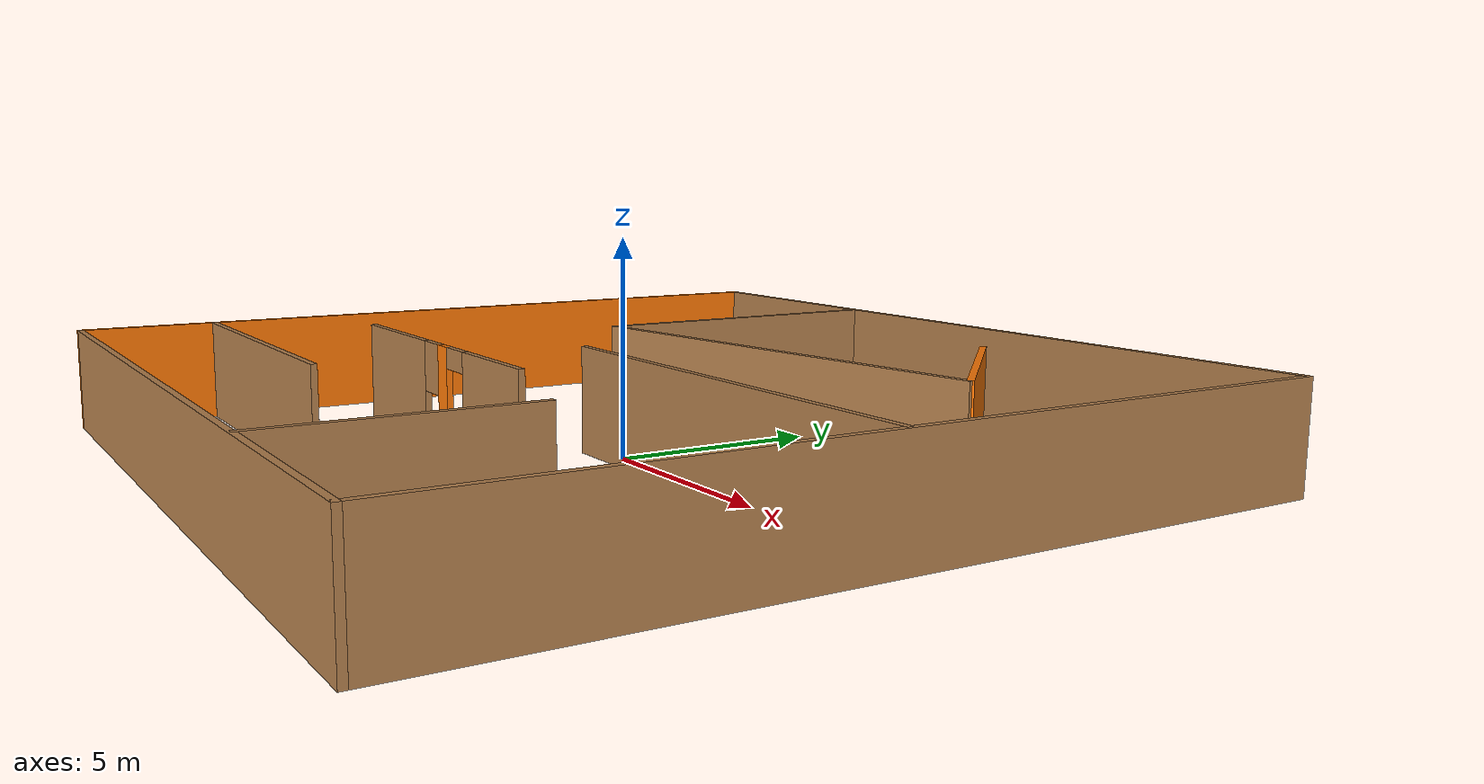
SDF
<?xml version='1.0'?>
<sdf version='1.7'>
  <model name='floor'>
    <pose>-0.005502 -0.011603 0 0 -0 0</pose>
    <link name='Wall_0'>
      <pose>-3.0545 -3.1384 0 0 -0 0</pose>
      <visual name='Wall_0_Visual_0'>
        <pose>-2.5456 0 1.25 0 -0 0</pose>
        <geometry>
          <box>
            <size>3.65881 0.15 2.5</size>
          </box>
        </geometry>
        <material>
          <script>
            <uri>file://media/materials/scripts/gazebo.material</uri>
            <name>Gazebo/Wood</name>
          </script>
          <ambient>0.996078 0.47451 0.0196078 1</ambient>
        </material>
        <meta>
          <layer>0</layer>
        </meta>
      </visual>
      <collision name='Wall_0_Collision_0'>
        <geometry>
          <box>
            <size>3.65881 0.15 2.5</size>
          </box>
        </geometry>
        <pose>-2.5456 0 1.25 0 -0 0</pose>
      </collision>
      <visual name='Wall_0_Visual_1'>
        <pose>2.93247 0 1.25 0 -0 0</pose>
        <geometry>
          <box>
            <size>2.88506 0.15 2.5</size>
          </box>
        </geometry>
        <material>
          <script>
            <uri>file://media/materials/scripts/gazebo.material</uri>
            <name>Gazebo/Wood</name>
          </script>
          <ambient>0.996078 0.47451 0.0196078 1</ambient>
        </material>
        <meta>
          <layer>0</layer>
        </meta>
      </visual>
      <collision name='Wall_0_Collision_1'>
        <geometry>
          <box>
            <size>2.88506 0.15 2.5</size>
          </box>
        </geometry>
        <pose>2.93247 0 1.25 0 -0 0</pose>
      </collision>
      <visual name='Wall_0_Visual_2'>
        <pose>-0.063127 0 0.25 0 -0 0</pose>
        <geometry>
          <box>
            <size>1.30614 0.15 0.5</size>
          </box>
        </geometry>
        <material>
          <script>
            <uri>file://media/materials/scripts/gazebo.material</uri>
            <name>Gazebo/Wood</name>
          </script>
          <ambient>0.996078 0.47451 0.0196078 1</ambient>
        </material>
        <meta>
          <layer>0</layer>
        </meta>
      </visual>
      <collision name='Wall_0_Collision_2'>
        <geometry>
          <box>
            <size>1.30614 0.15 0.5</size>
          </box>
        </geometry>
        <pose>-0.063127 0 0.25 0 -0 0</pose>
      </collision>
      <visual name='Wall_0_Visual_3'>
        <pose>0.336873 0 1.5 0 -0 0</pose>
        <geometry>
          <box>
            <size>0.506135 0.15 2</size>
          </box>
        </geometry>
        <material>
          <script>
            <uri>file://media/materials/scripts/gazebo.material</uri>
            <name>Gazebo/Grey</name>
          </script>
          <ambient>0.996078 0.47451 0.0196078 1</ambient>
        </material>
        <meta>
          <layer>0</layer>
        </meta>
      </visual>
      <collision name='Wall_0_Collision_3'>
        <geometry>
          <box>
            <size>0.506135 0.15 2</size>
          </box>
        </geometry>
        <pose>0.336873 0 1.5 0 -0 0</pose>
      </collision>
      <visual name='Wall_0_Visual_4'>
        <pose>-0.316195 0 1.9 0 -0 0</pose>
        <geometry>
          <box>
            <size>0.8 0.15 1.2</size>
          </box>
        </geometry>
        <material>
          <script>
            <uri>file://media/materials/scripts/gazebo.material</uri>
            <name>Gazebo/Wood</name>
          </script>
          <ambient>0.996078 0.47451 0.0196078 1</ambient>
        </material>
        <meta>
          <layer>0</layer>
        </meta>
      </visual>
      <collision name='Wall_0_Collision_4'>
        <geometry>
          <box>
            <size>0.8 0.15 1.2</size>
          </box>
        </geometry>
        <pose>-0.316195 0 1.9 0 -0 0</pose>
      </collision>
      <visual name='Wall_0_Visual_5'>
        <pose>1.03994 0 2.25 0 -0 0</pose>
        <geometry>
          <box>
            <size>0.9 0.15 0.5</size>
          </box>
        </geometry>
        <material>
          <script>
            <uri>file://media/materials/scripts/gazebo.material</uri>
            <name>Gazebo/Wood</name>
          </script>
          <ambient>0.996078 0.47451 0.0196078 1</ambient>
        </material>
        <meta>
          <layer>0</layer>
        </meta>
      </visual>
      <collision name='Wall_0_Collision_5'>
        <geometry>
          <box>
            <size>0.9 0.15 0.5</size>
          </box>
        </geometry>
        <pose>1.03994 0 2.25 0 -0 0</pose>
      </collision>
    </link>
    <link name='Wall_10'>
      <collision name='Wall_10_Collision'>
        <geometry>
          <box>
            <size>5.10879 0.15 2.5</size>
          </box>
        </geometry>
        <pose>0 0 1.25 0 -0 0</pose>
      </collision>
      <visual name='Wall_10_Visual'>
        <pose>0 0 1.25 0 -0 0</pose>
        <geometry>
          <box>
            <size>5.10879 0.15 2.5</size>
          </box>
        </geometry>
        <material>
          <script>
            <uri>file://media/materials/scripts/gazebo.material</uri>
            <name>Gazebo/Grey</name>
          </script>
          <ambient>0.996078 0.47451 0.0196078 1</ambient>
        </material>
        <meta>
          <layer>0</layer>
        </meta>
      </visual>
      <pose>5.30311 5.59767 0 0 -0 2.31539</pose>
    </link>
    <link name='Wall_12'>
      <collision name='Wall_12_Collision'>
        <geometry>
          <box>
            <size>5.75 0.15 2.5</size>
          </box>
        </geometry>
        <pose>0 0 1.25 0 -0 0</pose>
      </collision>
      <visual name='Wall_12_Visual'>
        <pose>0 0 1.25 0 -0 0</pose>
        <geometry>
          <box>
            <size>5.75 0.15 2.5</size>
          </box>
        </geometry>
        <material>
          <script>
            <uri>file://media/materials/scripts/gazebo.material</uri>
            <name>Gazebo/Wood</name>
          </script>
          <ambient>0.996078 0.47451 0.0196078 1</ambient>
        </material>
        <meta>
          <layer>0</layer>
        </meta>
      </visual>
      <pose>4.82768 -7.06964 0 0 -0 1.5708</pose>
    </link>
    <link name='Wall_14'>
      <collision name='Wall_14_Collision'>
        <geometry>
          <box>
            <size>11 0.15 2.5</size>
          </box>
        </geometry>
        <pose>0 0 1.25 0 -0 0</pose>
      </collision>
      <visual name='Wall_14_Visual'>
        <pose>0 0 1.25 0 -0 0</pose>
        <geometry>
          <box>
            <size>11 0.15 2.5</size>
          </box>
        </geometry>
        <material>
          <script>
            <uri>file://media/materials/scripts/gazebo.material</uri>
            <name>Gazebo/Wood</name>
          </script>
          <ambient>0.996078 0.47451 0.0196078 1</ambient>
        </material>
        <meta>
          <layer>0</layer>
        </meta>
      </visual>
      <pose>4.42726 -0.378761 0 0 -0 3.14159</pose>
    </link>
    <link name='Wall_16'>
      <collision name='Wall_16_Collision'>
        <geometry>
          <box>
            <size>8.5 0.15 2.5</size>
          </box>
        </geometry>
        <pose>0 0 1.25 0 -0 0</pose>
      </collision>
      <visual name='Wall_16_Visual'>
        <pose>0 0 1.25 0 -0 0</pose>
        <geometry>
          <box>
            <size>8.5 0.15 2.5</size>
          </box>
        </geometry>
        <material>
          <script>
            <uri>file://media/materials/scripts/gazebo.material</uri>
            <name>Gazebo/Wood</name>
          </script>
          <ambient>0.996078 0.47451 0.0196078 1</ambient>
        </material>
        <meta>
          <layer>0</layer>
        </meta>
      </visual>
      <pose>-5.7211 -6.61297 0 0 -0 3.14159</pose>
    </link>
    <link name='Wall_2'>
      <collision name='Wall_2_Collision'>
        <geometry>
          <box>
            <size>20 0.15 2.5</size>
          </box>
        </geometry>
        <pose>0 0 1.25 0 -0 0</pose>
      </collision>
      <visual name='Wall_2_Visual'>
        <pose>0 0 1.25 0 -0 0</pose>
        <geometry>
          <box>
            <size>20 0.15 2.5</size>
          </box>
        </geometry>
        <material>
          <script>
            <uri>file://media/materials/scripts/gazebo.material</uri>
            <name>Gazebo/Grey</name>
          </script>
          <ambient>0.996078 0.47451 0.0196078 1</ambient>
        </material>
        <meta>
          <layer>0</layer>
        </meta>
      </visual>
      <pose>-9.925 -0 0 0 -0 -1.5708</pose>
    </link>
    <link name='Wall_4'>
      <collision name='Wall_4_Collision'>
        <geometry>
          <box>
            <size>20 0.15 2.5</size>
          </box>
        </geometry>
        <pose>0 0 1.25 0 -0 0</pose>
      </collision>
      <visual name='Wall_4_Visual'>
        <pose>0 0 1.25 0 -0 0</pose>
        <geometry>
          <box>
            <size>20 0.15 2.5</size>
          </box>
        </geometry>
        <material>
          <script>
            <uri>file://media/materials/scripts/gazebo.material</uri>
            <name>Gazebo/Wood</name>
          </script>
          <ambient>0.996078 0.47451 0.0196078 1</ambient>
        </material>
        <meta>
          <layer>0</layer>
        </meta>
      </visual>
      <pose>-0 9.925 0 0 -0 0</pose>
    </link>
    <link name='Wall_5'>
      <collision name='Wall_5_Collision'>
        <geometry>
          <box>
            <size>20 0.15 2.5</size>
          </box>
        </geometry>
        <pose>0 0 1.25 0 -0 0</pose>
      </collision>
      <visual name='Wall_5_Visual'>
        <pose>0 0 1.25 0 -0 0</pose>
        <geometry>
          <box>
            <size>20 0.15 2.5</size>
          </box>
        </geometry>
        <material>
          <script>
            <uri>file://media/materials/scripts/gazebo.material</uri>
            <name>Gazebo/Wood</name>
          </script>
          <ambient>0.996078 0.47451 0.0196078 1</ambient>
        </material>
        <meta>
          <layer>0</layer>
        </meta>
      </visual>
      <pose>9.925 -0 0 0 -0 -1.5708</pose>
    </link>
    <link name='Wall_6'>
      <collision name='Wall_6_Collision'>
        <geometry>
          <box>
            <size>20 0.15 2.5</size>
          </box>
        </geometry>
        <pose>0 0 1.25 0 -0 0</pose>
      </collision>
      <visual name='Wall_6_Visual'>
        <pose>0 0 1.25 0 -0 0</pose>
        <geometry>
          <box>
            <size>20 0.15 2.5</size>
          </box>
        </geometry>
        <material>
          <script>
            <uri>file://media/materials/scripts/gazebo.material</uri>
            <name>Gazebo/Wood</name>
          </script>
          <ambient>0.996078 0.47451 0.0196078 1</ambient>
        </material>
        <meta>
          <layer>0</layer>
        </meta>
      </visual>
      <pose>-0 -9.925 0 0 -0 3.14159</pose>
    </link>
    <link name='Wall_8'>
      <collision name='Wall_8_Collision'>
        <geometry>
          <box>
            <size>7.86057 0.15 2.5</size>
          </box>
        </geometry>
        <pose>0 0 1.25 0 -0 0</pose>
      </collision>
      <visual name='Wall_8_Visual'>
        <pose>0 0 1.25 0 -0 0</pose>
        <geometry>
          <box>
            <size>7.86057 0.15 2.5</size>
          </box>
        </geometry>
        <material>
          <script>
            <uri>file://media/materials/scripts/gazebo.material</uri>
            <name>Gazebo/Wood</name>
          </script>
          <ambient>0.996078 0.47451 0.0196078 1</ambient>
        </material>
        <meta>
          <layer>0</layer>
        </meta>
      </visual>
      <pose>-3.94208 6.00129 0 0 -0 -1.57683</pose>
    </link>
    <link name='Wall_9'>
      <collision name='Wall_9_Collision'>
        <geometry>
          <box>
            <size>11.2191 0.15 2.5</size>
          </box>
        </geometry>
        <pose>0 0 1.25 0 -0 0</pose>
      </collision>
      <visual name='Wall_9_Visual'>
        <pose>0 0 1.25 0 -0 0</pose>
        <geometry>
          <box>
            <size>11.2191 0.15 2.5</size>
          </box>
        </geometry>
        <material>
          <script>
            <uri>file://media/materials/scripts/gazebo.material</uri>
            <name>Gazebo/Wood</name>
          </script>
          <ambient>0.996078 0.47451 0.0196078 1</ambient>
        </material>
        <meta>
          <layer>0</layer>
        </meta>
      </visual>
      <pose>1.50899 2.91372 0 0 -0 0.147642</pose>
    </link>
    <static>1</static>
  </model>
</sdf>
